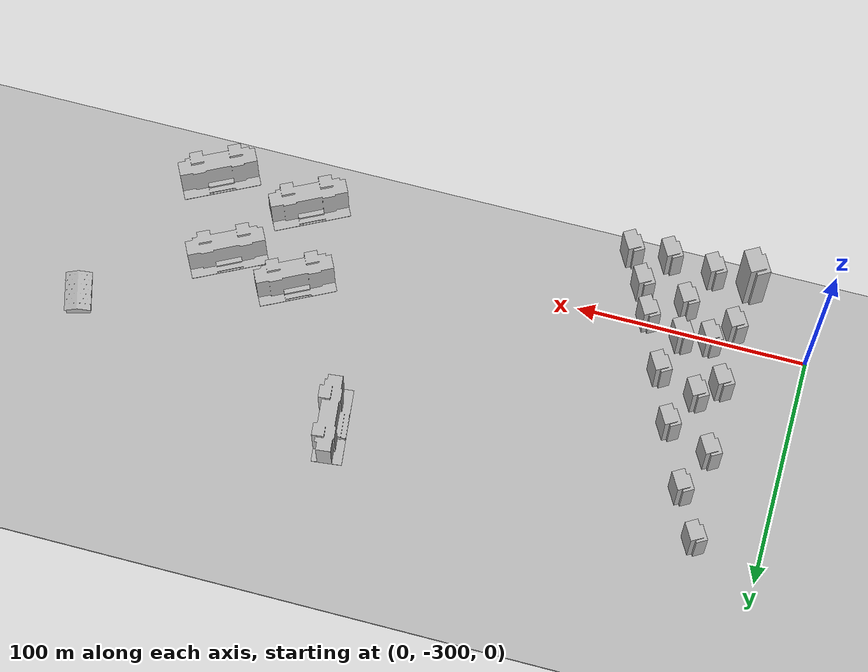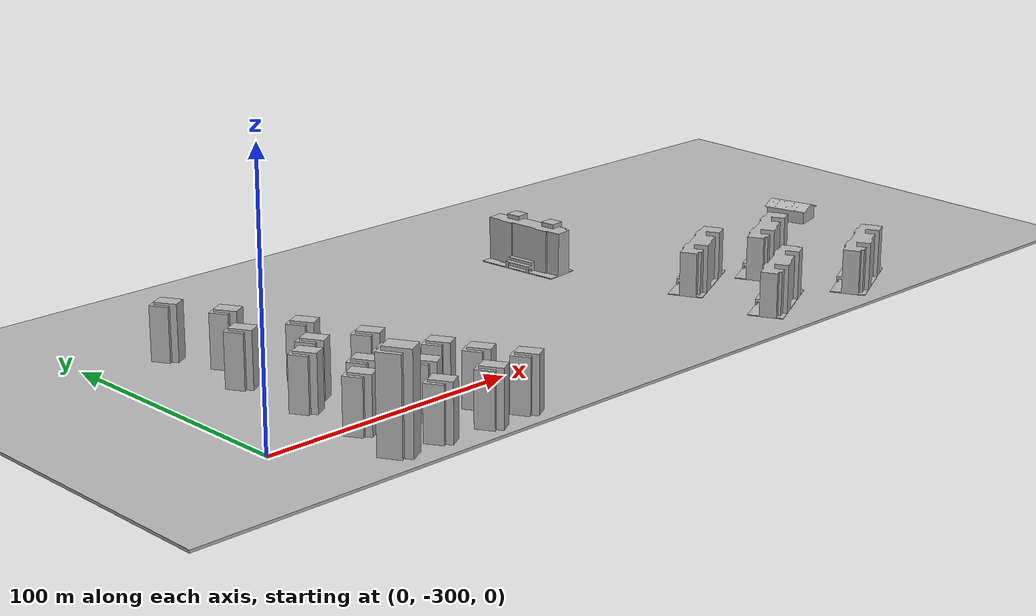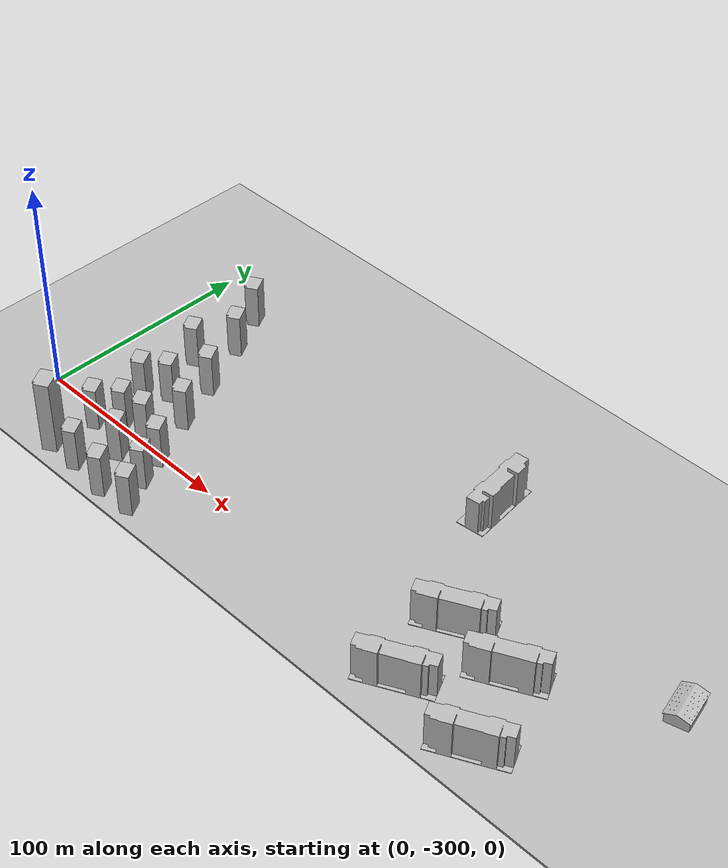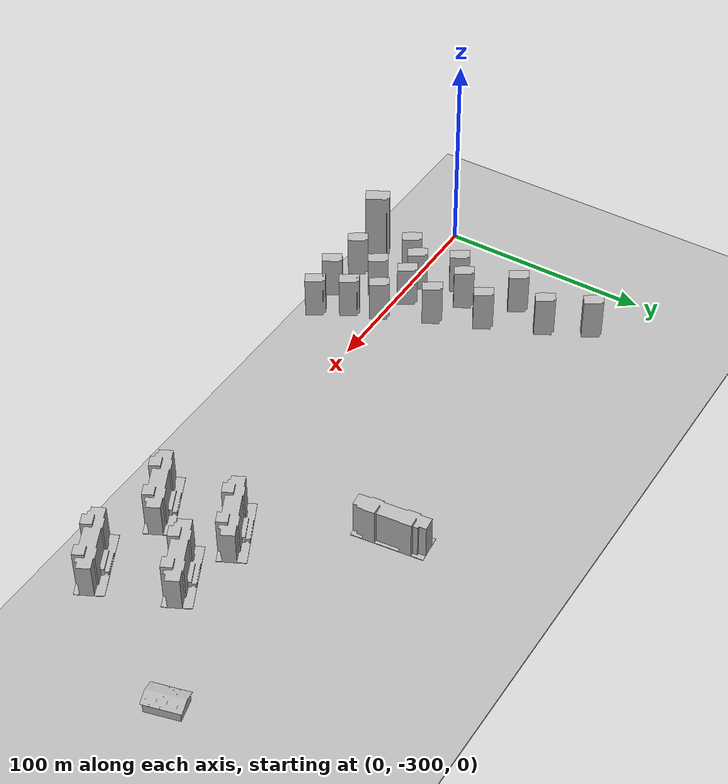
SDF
<sdf version="1.7">
 <world name="default">
  <model name="ground_plane">
   <static>1</static>
   <link name="link">
    <collision name="collision">
     <geometry><mesh><uri>model://ground_plane/scripts/plane.dae</uri><normal>0 0 1</normal></mesh></geometry>
     <surface><friction><ode><mu>100</mu><mu2>50</mu2></ode></friction></surface>
    </collision>
    <visual name="visual">
     <geometry><mesh><uri>model://ground_plane/scripts/plane.dae</uri><normal>0 0 1</normal></mesh></geometry>
     <material>
      <lighting>1</lighting>
      <script><uri>model://ground_plane/scripts/plane.jpg</uri><name>__default__</name></script>
      <shader type="pixel"/>
     </material>
    </visual>
   </link>
  </model>
  <model name="apartment4_clone_3">
   <static>1</static>
   <link name="link_0">
    <inertial>
     <mass>1</mass>
     <inertia>
      <ixx>0.166667</ixx>
      <ixy>0</ixy>
      <ixz>0</ixz>
      <iyy>0.166667</iyy>
      <iyz>0</iyz>
      <izz>0.166667</izz>
     </inertia>
    </inertial>
    <pose>1e-06 -0 0 0 -0 0</pose>
    <visual name="visual">
     <geometry>
      <mesh><uri>model://apartment4/scripts/apartment1.dae</uri><scale>0.14 0.14 0.175</scale></mesh>
     </geometry>
     <material>
      <lighting>1</lighting>
      <script><uri>model://apartment4/scripts/apartment1.jpg</uri><name>__default__</name></script>
      <shader type="pixel"/>
     </material>
    </visual>
    <collision name="collision">
     <geometry>
      <mesh><uri>model://apartment4/scripts/apartment1.dae</uri><scale>0.14 0.14 0.175</scale></mesh>
     </geometry>
     <surface>
      <friction>
       <ode><mu>1</mu><mu2>1</mu2><fdir1>0 0 0</fdir1><slip1>0</slip1><slip2>0</slip2></ode>
       <torsional>
        <coefficient>1</coefficient>
        <patch_radius>0</patch_radius>
        <surface_radius>0</surface_radius>
        <use_patch_radius>1</use_patch_radius>
        <ode><slip>0</slip></ode>
       </torsional>
      </friction>
      <bounce><restitution_coefficient>0</restitution_coefficient><threshold>1e+06</threshold></bounce>
      <contact>
       <collide_without_contact>0</collide_without_contact>
       <collide_without_contact_bitmask>1</collide_without_contact_bitmask>
       <collide_bitmask>1</collide_bitmask>
       <ode>
        <soft_cfm>0</soft_cfm>
        <soft_erp>0.2</soft_erp>
        <kp>1e+13</kp>
        <kd>1</kd>
        <max_vel>0.01</max_vel>
        <min_depth>0</min_depth>
       </ode>
       <bullet>
        <split_impulse>1</split_impulse>
        <split_impulse_penetration_threshold>-0.01</split_impulse_penetration_threshold>
        <soft_cfm>0</soft_cfm>
        <soft_erp>0.2</soft_erp>
        <kp>1e+13</kp>
        <kd>1</kd>
       </bullet>
      </contact>
     </surface>
    </collision>
   </link>
   <static>0</static>
   <pose>29.4046 -209.903 0 0 -0 0.524325</pose>
  </model>
  <model name="apartment4_clone_4">
   <static>1</static>
   <link name="link_0">
    <inertial>
     <mass>1</mass>
     <inertia>
      <ixx>0.166667</ixx>
      <ixy>0</ixy>
      <ixz>0</ixz>
      <iyy>0.166667</iyy>
      <iyz>0</iyz>
      <izz>0.166667</izz>
     </inertia>
    </inertial>
    <pose>1e-06 -0 0 0 -0 0</pose>
    <visual name="visual">
     <geometry>
      <mesh><uri>model://apartment4/scripts/apartment1.dae</uri><scale>0.14 0.14 0.175</scale></mesh>
     </geometry>
     <material>
      <lighting>1</lighting>
      <script><uri>model://apartment4/scripts/apartment1.jpg</uri><name>__default__</name></script>
      <shader type="pixel"/>
     </material>
    </visual>
    <collision name="collision">
     <geometry>
      <mesh><uri>model://apartment4/scripts/apartment1.dae</uri><scale>0.14 0.14 0.175</scale></mesh>
     </geometry>
     <surface>
      <friction>
       <ode><mu>1</mu><mu2>1</mu2><fdir1>0 0 0</fdir1><slip1>0</slip1><slip2>0</slip2></ode>
       <torsional>
        <coefficient>1</coefficient>
        <patch_radius>0</patch_radius>
        <surface_radius>0</surface_radius>
        <use_patch_radius>1</use_patch_radius>
        <ode><slip>0</slip></ode>
       </torsional>
      </friction>
      <bounce><restitution_coefficient>0</restitution_coefficient><threshold>1e+06</threshold></bounce>
      <contact>
       <collide_without_contact>0</collide_without_contact>
       <collide_without_contact_bitmask>1</collide_without_contact_bitmask>
       <collide_bitmask>1</collide_bitmask>
       <ode>
        <soft_cfm>0</soft_cfm>
        <soft_erp>0.2</soft_erp>
        <kp>1e+13</kp>
        <kd>1</kd>
        <max_vel>0.01</max_vel>
        <min_depth>0</min_depth>
       </ode>
       <bullet>
        <split_impulse>1</split_impulse>
        <split_impulse_penetration_threshold>-0.01</split_impulse_penetration_threshold>
        <soft_cfm>0</soft_cfm>
        <soft_erp>0.2</soft_erp>
        <kp>1e+13</kp>
        <kd>1</kd>
       </bullet>
      </contact>
     </surface>
    </collision>
   </link>
   <static>0</static>
   <pose>39.5968 -229.73 0 0 -0 0.524325</pose>
  </model>
  <model name="apartment4_clone_5">
   <static>1</static>
   <link name="link_0">
    <inertial>
     <mass>1</mass>
     <inertia>
      <ixx>0.166667</ixx>
      <ixy>0</ixy>
      <ixz>0</ixz>
      <iyy>0.166667</iyy>
      <iyz>0</iyz>
      <izz>0.166667</izz>
     </inertia>
    </inertial>
    <pose>1e-06 -0 0 0 -0 0</pose>
    <visual name="visual">
     <geometry>
      <mesh><uri>model://apartment4/scripts/apartment1.dae</uri><scale>0.14 0.14 0.175</scale></mesh>
     </geometry>
     <material>
      <lighting>1</lighting>
      <script><uri>model://apartment4/scripts/apartment1.jpg</uri><name>__default__</name></script>
      <shader type="pixel"/>
     </material>
    </visual>
    <collision name="collision">
     <geometry>
      <mesh><uri>model://apartment4/scripts/apartment1.dae</uri><scale>0.14 0.14 0.175</scale></mesh>
     </geometry>
     <surface>
      <friction>
       <ode><mu>1</mu><mu2>1</mu2><fdir1>0 0 0</fdir1><slip1>0</slip1><slip2>0</slip2></ode>
       <torsional>
        <coefficient>1</coefficient>
        <patch_radius>0</patch_radius>
        <surface_radius>0</surface_radius>
        <use_patch_radius>1</use_patch_radius>
        <ode><slip>0</slip></ode>
       </torsional>
      </friction>
      <bounce><restitution_coefficient>0</restitution_coefficient><threshold>1e+06</threshold></bounce>
      <contact>
       <collide_without_contact>0</collide_without_contact>
       <collide_without_contact_bitmask>1</collide_without_contact_bitmask>
       <collide_bitmask>1</collide_bitmask>
       <ode>
        <soft_cfm>0</soft_cfm>
        <soft_erp>0.2</soft_erp>
        <kp>1e+13</kp>
        <kd>1</kd>
        <max_vel>0.01</max_vel>
        <min_depth>0</min_depth>
       </ode>
       <bullet>
        <split_impulse>1</split_impulse>
        <split_impulse_penetration_threshold>-0.01</split_impulse_penetration_threshold>
        <soft_cfm>0</soft_cfm>
        <soft_erp>0.2</soft_erp>
        <kp>1e+13</kp>
        <kd>1</kd>
       </bullet>
      </contact>
     </surface>
    </collision>
   </link>
   <static>0</static>
   <pose>51.2023 -256.153 0 0 -0 0.524325</pose>
  </model>
  <model name="apartment4_clone_6">
   <static>1</static>
   <link name="link_0">
    <inertial>
     <mass>1</mass>
     <inertia>
      <ixx>0.166667</ixx>
      <ixy>0</ixy>
      <ixz>0</ixz>
      <iyy>0.166667</iyy>
      <iyz>0</iyz>
      <izz>0.166667</izz>
     </inertia>
    </inertial>
    <pose>1e-06 -0 0 0 -0 0</pose>
    <visual name="visual">
     <geometry>
      <mesh><uri>model://apartment4/scripts/apartment1.dae</uri><scale>0.14 0.14 0.175</scale></mesh>
     </geometry>
     <material>
      <lighting>1</lighting>
      <script><uri>model://apartment4/scripts/apartment1.jpg</uri><name>__default__</name></script>
      <shader type="pixel"/>
     </material>
    </visual>
    <collision name="collision">
     <geometry>
      <mesh><uri>model://apartment4/scripts/apartment1.dae</uri><scale>0.14 0.14 0.175</scale></mesh>
     </geometry>
     <surface>
      <friction>
       <ode><mu>1</mu><mu2>1</mu2><fdir1>0 0 0</fdir1><slip1>0</slip1><slip2>0</slip2></ode>
       <torsional>
        <coefficient>1</coefficient>
        <patch_radius>0</patch_radius>
        <surface_radius>0</surface_radius>
        <use_patch_radius>1</use_patch_radius>
        <ode><slip>0</slip></ode>
       </torsional>
      </friction>
      <bounce><restitution_coefficient>0</restitution_coefficient><threshold>1e+06</threshold></bounce>
      <contact>
       <collide_without_contact>0</collide_without_contact>
       <collide_without_contact_bitmask>1</collide_without_contact_bitmask>
       <collide_bitmask>1</collide_bitmask>
       <ode>
        <soft_cfm>0</soft_cfm>
        <soft_erp>0.2</soft_erp>
        <kp>1e+13</kp>
        <kd>1</kd>
        <max_vel>0.01</max_vel>
        <min_depth>0</min_depth>
       </ode>
       <bullet>
        <split_impulse>1</split_impulse>
        <split_impulse_penetration_threshold>-0.01</split_impulse_penetration_threshold>
        <soft_cfm>0</soft_cfm>
        <soft_erp>0.2</soft_erp>
        <kp>1e+13</kp>
        <kd>1</kd>
       </bullet>
      </contact>
     </surface>
    </collision>
   </link>
   <static>0</static>
   <pose>60.3933 -278.563 0 0 -0 0.524325</pose>
  </model>
  <model name="apartment4_clone_7">
   <static>1</static>
   <link name="link_0">
    <inertial>
     <mass>1</mass>
     <inertia>
      <ixx>0.166667</ixx>
      <ixy>0</ixy>
      <ixz>0</ixz>
      <iyy>0.166667</iyy>
      <iyz>0</iyz>
      <izz>0.166667</izz>
     </inertia>
    </inertial>
    <pose>1e-06 -0 0 0 -0 0</pose>
    <visual name="visual">
     <geometry>
      <mesh><uri>model://apartment4/scripts/apartment1.dae</uri><scale>0.14 0.14 0.175</scale></mesh>
     </geometry>
     <material>
      <lighting>1</lighting>
      <script><uri>model://apartment4/scripts/apartment1.jpg</uri><name>__default__</name></script>
      <shader type="pixel"/>
     </material>
    </visual>
    <collision name="collision">
     <geometry>
      <mesh><uri>model://apartment4/scripts/apartment1.dae</uri><scale>0.14 0.14 0.175</scale></mesh>
     </geometry>
     <surface>
      <friction>
       <ode><mu>1</mu><mu2>1</mu2><fdir1>0 0 0</fdir1><slip1>0</slip1><slip2>0</slip2></ode>
       <torsional>
        <coefficient>1</coefficient>
        <patch_radius>0</patch_radius>
        <surface_radius>0</surface_radius>
        <use_patch_radius>1</use_patch_radius>
        <ode><slip>0</slip></ode>
       </torsional>
      </friction>
      <bounce><restitution_coefficient>0</restitution_coefficient><threshold>1e+06</threshold></bounce>
      <contact>
       <collide_without_contact>0</collide_without_contact>
       <collide_without_contact_bitmask>1</collide_without_contact_bitmask>
       <collide_bitmask>1</collide_bitmask>
       <ode>
        <soft_cfm>0</soft_cfm>
        <soft_erp>0.2</soft_erp>
        <kp>1e+13</kp>
        <kd>1</kd>
        <max_vel>0.01</max_vel>
        <min_depth>0</min_depth>
       </ode>
       <bullet>
        <split_impulse>1</split_impulse>
        <split_impulse_penetration_threshold>-0.01</split_impulse_penetration_threshold>
        <soft_cfm>0</soft_cfm>
        <soft_erp>0.2</soft_erp>
        <kp>1e+13</kp>
        <kd>1</kd>
       </bullet>
      </contact>
     </surface>
    </collision>
   </link>
   <static>0</static>
   <pose>70.7858 -301.382 0 0 -0 0.524325</pose>
  </model>
  <model name="apartment4_clone_8">
   <static>1</static>
   <link name="link_0">
    <inertial>
     <mass>1</mass>
     <inertia>
      <ixx>0.166667</ixx>
      <ixy>0</ixy>
      <ixz>0</ixz>
      <iyy>0.166667</iyy>
      <iyz>0</iyz>
      <izz>0.166667</izz>
     </inertia>
    </inertial>
    <pose>1e-06 -0 0 0 -0 0</pose>
    <visual name="visual">
     <geometry>
      <mesh><uri>model://apartment4/scripts/apartment1.dae</uri><scale>0.14 0.14 0.175</scale></mesh>
     </geometry>
     <material>
      <lighting>1</lighting>
      <script><uri>model://apartment4/scripts/apartment1.jpg</uri><name>__default__</name></script>
      <shader type="pixel"/>
     </material>
    </visual>
    <collision name="collision">
     <geometry>
      <mesh><uri>model://apartment4/scripts/apartment1.dae</uri><scale>0.14 0.14 0.175</scale></mesh>
     </geometry>
     <surface>
      <friction>
       <ode><mu>1</mu><mu2>1</mu2><fdir1>0 0 0</fdir1><slip1>0</slip1><slip2>0</slip2></ode>
       <torsional>
        <coefficient>1</coefficient>
        <patch_radius>0</patch_radius>
        <surface_radius>0</surface_radius>
        <use_patch_radius>1</use_patch_radius>
        <ode><slip>0</slip></ode>
       </torsional>
      </friction>
      <bounce><restitution_coefficient>0</restitution_coefficient><threshold>1e+06</threshold></bounce>
      <contact>
       <collide_without_contact>0</collide_without_contact>
       <collide_without_contact_bitmask>1</collide_without_contact_bitmask>
       <collide_bitmask>1</collide_bitmask>
       <ode>
        <soft_cfm>0</soft_cfm>
        <soft_erp>0.2</soft_erp>
        <kp>1e+13</kp>
        <kd>1</kd>
        <max_vel>0.01</max_vel>
        <min_depth>0</min_depth>
       </ode>
       <bullet>
        <split_impulse>1</split_impulse>
        <split_impulse_penetration_threshold>-0.01</split_impulse_penetration_threshold>
        <soft_cfm>0</soft_cfm>
        <soft_erp>0.2</soft_erp>
        <kp>1e+13</kp>
        <kd>1</kd>
       </bullet>
      </contact>
     </surface>
    </collision>
   </link>
   <static>0</static>
   <pose>84.164 -328.618 0 0 -0 0.524325</pose>
  </model>
  <model name="apartment4_clone_9">
   <static>1</static>
   <link name="link_0">
    <inertial>
     <mass>1</mass>
     <inertia>
      <ixx>0.166667</ixx>
      <ixy>0</ixy>
      <ixz>0</ixz>
      <iyy>0.166667</iyy>
      <iyz>0</iyz>
      <izz>0.166667</izz>
     </inertia>
    </inertial>
    <pose>1e-06 -0 0 0 -0 0</pose>
    <visual name="visual">
     <geometry>
      <mesh><uri>model://apartment4/scripts/apartment1.dae</uri><scale>0.14 0.14 0.175</scale></mesh>
     </geometry>
     <material>
      <lighting>1</lighting>
      <script><uri>model://apartment4/scripts/apartment1.jpg</uri><name>__default__</name></script>
      <shader type="pixel"/>
     </material>
    </visual>
    <collision name="collision">
     <geometry>
      <mesh><uri>model://apartment4/scripts/apartment1.dae</uri><scale>0.14 0.14 0.175</scale></mesh>
     </geometry>
     <surface>
      <friction>
       <ode><mu>1</mu><mu2>1</mu2><fdir1>0 0 0</fdir1><slip1>0</slip1><slip2>0</slip2></ode>
       <torsional>
        <coefficient>1</coefficient>
        <patch_radius>0</patch_radius>
        <surface_radius>0</surface_radius>
        <use_patch_radius>1</use_patch_radius>
        <ode><slip>0</slip></ode>
       </torsional>
      </friction>
      <bounce><restitution_coefficient>0</restitution_coefficient><threshold>1e+06</threshold></bounce>
      <contact>
       <collide_without_contact>0</collide_without_contact>
       <collide_without_contact_bitmask>1</collide_without_contact_bitmask>
       <collide_bitmask>1</collide_bitmask>
       <ode>
        <soft_cfm>0</soft_cfm>
        <soft_erp>0.2</soft_erp>
        <kp>1e+13</kp>
        <kd>1</kd>
        <max_vel>0.01</max_vel>
        <min_depth>0</min_depth>
       </ode>
       <bullet>
        <split_impulse>1</split_impulse>
        <split_impulse_penetration_threshold>-0.01</split_impulse_penetration_threshold>
        <soft_cfm>0</soft_cfm>
        <soft_erp>0.2</soft_erp>
        <kp>1e+13</kp>
        <kd>1</kd>
       </bullet>
      </contact>
     </surface>
    </collision>
   </link>
   <static>0</static>
   <pose>67.5063 -329.805 0 0 -0 0.524325</pose>
  </model>
  <model name="apartment4_clone_10">
   <static>1</static>
   <link name="link_0">
    <inertial>
     <mass>1</mass>
     <inertia>
      <ixx>0.166667</ixx>
      <ixy>0</ixy>
      <ixz>0</ixz>
      <iyy>0.166667</iyy>
      <iyz>0</iyz>
      <izz>0.166667</izz>
     </inertia>
    </inertial>
    <pose>1e-06 -0 0 0 -0 0</pose>
    <visual name="visual">
     <geometry>
      <mesh><uri>model://apartment4/scripts/apartment1.dae</uri><scale>0.14 0.14 0.175</scale></mesh>
     </geometry>
     <material>
      <lighting>1</lighting>
      <script><uri>model://apartment4/scripts/apartment1.jpg</uri><name>__default__</name></script>
      <shader type="pixel"/>
     </material>
    </visual>
    <collision name="collision">
     <geometry>
      <mesh><uri>model://apartment4/scripts/apartment1.dae</uri><scale>0.14 0.14 0.175</scale></mesh>
     </geometry>
     <surface>
      <friction>
       <ode><mu>1</mu><mu2>1</mu2><fdir1>0 0 0</fdir1><slip1>0</slip1><slip2>0</slip2></ode>
       <torsional>
        <coefficient>1</coefficient>
        <patch_radius>0</patch_radius>
        <surface_radius>0</surface_radius>
        <use_patch_radius>1</use_patch_radius>
        <ode><slip>0</slip></ode>
       </torsional>
      </friction>
      <bounce><restitution_coefficient>0</restitution_coefficient><threshold>1e+06</threshold></bounce>
      <contact>
       <collide_without_contact>0</collide_without_contact>
       <collide_without_contact_bitmask>1</collide_without_contact_bitmask>
       <collide_bitmask>1</collide_bitmask>
       <ode>
        <soft_cfm>0</soft_cfm>
        <soft_erp>0.2</soft_erp>
        <kp>1e+13</kp>
        <kd>1</kd>
        <max_vel>0.01</max_vel>
        <min_depth>0</min_depth>
       </ode>
       <bullet>
        <split_impulse>1</split_impulse>
        <split_impulse_penetration_threshold>-0.01</split_impulse_penetration_threshold>
        <soft_cfm>0</soft_cfm>
        <soft_erp>0.2</soft_erp>
        <kp>1e+13</kp>
        <kd>1</kd>
       </bullet>
      </contact>
     </surface>
    </collision>
   </link>
   <static>0</static>
   <pose>54.7453 -295.615 0 0 -0 0.524325</pose>
  </model>
  <model name="apartment4_clone_11">
   <static>1</static>
   <link name="link_0">
    <inertial>
     <mass>1</mass>
     <inertia>
      <ixx>0.166667</ixx>
      <ixy>0</ixy>
      <ixz>0</ixz>
      <iyy>0.166667</iyy>
      <iyz>0</iyz>
      <izz>0.166667</izz>
     </inertia>
    </inertial>
    <pose>1e-06 -0 0 0 -0 0</pose>
    <visual name="visual">
     <geometry>
      <mesh><uri>model://apartment4/scripts/apartment1.dae</uri><scale>0.14 0.14 0.175</scale></mesh>
     </geometry>
     <material>
      <lighting>1</lighting>
      <script><uri>model://apartment4/scripts/apartment1.jpg</uri><name>__default__</name></script>
      <shader type="pixel"/>
     </material>
    </visual>
    <collision name="collision">
     <geometry>
      <mesh><uri>model://apartment4/scripts/apartment1.dae</uri><scale>0.14 0.14 0.175</scale></mesh>
     </geometry>
     <surface>
      <friction>
       <ode><mu>1</mu><mu2>1</mu2><fdir1>0 0 0</fdir1><slip1>0</slip1><slip2>0</slip2></ode>
       <torsional>
        <coefficient>1</coefficient>
        <patch_radius>0</patch_radius>
        <surface_radius>0</surface_radius>
        <use_patch_radius>1</use_patch_radius>
        <ode><slip>0</slip></ode>
       </torsional>
      </friction>
      <bounce><restitution_coefficient>0</restitution_coefficient><threshold>1e+06</threshold></bounce>
      <contact>
       <collide_without_contact>0</collide_without_contact>
       <collide_without_contact_bitmask>1</collide_without_contact_bitmask>
       <collide_bitmask>1</collide_bitmask>
       <ode>
        <soft_cfm>0</soft_cfm>
        <soft_erp>0.2</soft_erp>
        <kp>1e+13</kp>
        <kd>1</kd>
        <max_vel>0.01</max_vel>
        <min_depth>0</min_depth>
       </ode>
       <bullet>
        <split_impulse>1</split_impulse>
        <split_impulse_penetration_threshold>-0.01</split_impulse_penetration_threshold>
        <soft_cfm>0</soft_cfm>
        <soft_erp>0.2</soft_erp>
        <kp>1e+13</kp>
        <kd>1</kd>
       </bullet>
      </contact>
     </surface>
    </collision>
   </link>
   <static>0</static>
   <pose>42.8012 -271.496 0 0 -0 0.524325</pose>
  </model>
  <model name="apartment4_clone_12">
   <static>1</static>
   <link name="link_0">
    <inertial>
     <mass>1</mass>
     <inertia>
      <ixx>0.166667</ixx>
      <ixy>0</ixy>
      <ixz>0</ixz>
      <iyy>0.166667</iyy>
      <iyz>0</iyz>
      <izz>0.166667</izz>
     </inertia>
    </inertial>
    <pose>1e-06 -0 0 0 -0 0</pose>
    <visual name="visual">
     <geometry>
      <mesh><uri>model://apartment4/scripts/apartment1.dae</uri><scale>0.14 0.14 0.175</scale></mesh>
     </geometry>
     <material>
      <lighting>1</lighting>
      <script><uri>model://apartment4/scripts/apartment1.jpg</uri><name>__default__</name></script>
      <shader type="pixel"/>
     </material>
    </visual>
    <collision name="collision">
     <geometry>
      <mesh><uri>model://apartment4/scripts/apartment1.dae</uri><scale>0.14 0.14 0.175</scale></mesh>
     </geometry>
     <surface>
      <friction>
       <ode><mu>1</mu><mu2>1</mu2><fdir1>0 0 0</fdir1><slip1>0</slip1><slip2>0</slip2></ode>
       <torsional>
        <coefficient>1</coefficient>
        <patch_radius>0</patch_radius>
        <surface_radius>0</surface_radius>
        <use_patch_radius>1</use_patch_radius>
        <ode><slip>0</slip></ode>
       </torsional>
      </friction>
      <bounce><restitution_coefficient>0</restitution_coefficient><threshold>1e+06</threshold></bounce>
      <contact>
       <collide_without_contact>0</collide_without_contact>
       <collide_without_contact_bitmask>1</collide_without_contact_bitmask>
       <collide_bitmask>1</collide_bitmask>
       <ode>
        <soft_cfm>0</soft_cfm>
        <soft_erp>0.2</soft_erp>
        <kp>1e+13</kp>
        <kd>1</kd>
        <max_vel>0.01</max_vel>
        <min_depth>0</min_depth>
       </ode>
       <bullet>
        <split_impulse>1</split_impulse>
        <split_impulse_penetration_threshold>-0.01</split_impulse_penetration_threshold>
        <soft_cfm>0</soft_cfm>
        <soft_erp>0.2</soft_erp>
        <kp>1e+13</kp>
        <kd>1</kd>
       </bullet>
      </contact>
     </surface>
    </collision>
   </link>
   <static>0</static>
   <pose>31.8241 -247.96 0 0 -0 0.524325</pose>
  </model>
  <model name="apartment4_clone_29">
   <static>1</static>
   <link name="link_0">
    <inertial>
     <mass>1</mass>
     <inertia>
      <ixx>0.166667</ixx>
      <ixy>0</ixy>
      <ixz>0</ixz>
      <iyy>0.166667</iyy>
      <iyz>0</iyz>
      <izz>0.166667</izz>
     </inertia>
    </inertial>
    <pose>1e-06 -0 0 0 -0 0</pose>
    <visual name="visual">
     <geometry>
      <mesh><uri>model://apartment4/scripts/apartment1.dae</uri><scale>0.14 0.14 0.175</scale></mesh>
     </geometry>
     <material>
      <lighting>1</lighting>
      <script><uri>model://apartment4/scripts/apartment1.jpg</uri><name>__default__</name></script>
      <shader type="pixel"/>
     </material>
    </visual>
    <collision name="collision">
     <geometry>
      <mesh><uri>model://apartment4/scripts/apartment1.dae</uri><scale>0.14 0.14 0.175</scale></mesh>
     </geometry>
     <surface>
      <friction>
       <ode><mu>1</mu><mu2>1</mu2><fdir1>0 0 0</fdir1><slip1>0</slip1><slip2>0</slip2></ode>
       <torsional>
        <coefficient>1</coefficient>
        <patch_radius>0</patch_radius>
        <surface_radius>0</surface_radius>
        <use_patch_radius>1</use_patch_radius>
        <ode><slip>0</slip></ode>
       </torsional>
      </friction>
      <bounce><restitution_coefficient>0</restitution_coefficient><threshold>1e+06</threshold></bounce>
      <contact>
       <collide_without_contact>0</collide_without_contact>
       <collide_without_contact_bitmask>1</collide_without_contact_bitmask>
       <collide_bitmask>1</collide_bitmask>
       <ode>
        <soft_cfm>0</soft_cfm>
        <soft_erp>0.2</soft_erp>
        <kp>1e+13</kp>
        <kd>1</kd>
        <max_vel>0.01</max_vel>
        <min_depth>0</min_depth>
       </ode>
       <bullet>
        <split_impulse>1</split_impulse>
        <split_impulse_penetration_threshold>-0.01</split_impulse_penetration_threshold>
        <soft_cfm>0</soft_cfm>
        <soft_erp>0.2</soft_erp>
        <kp>1e+13</kp>
        <kd>1</kd>
       </bullet>
      </contact>
     </surface>
    </collision>
   </link>
   <static>0</static>
   <pose>33.5953 -279.153 0 0 -0 0.524325</pose>
  </model>
  <model name="apartment4_clone_30">
   <static>1</static>
   <link name="link_0">
    <inertial>
     <mass>1</mass>
     <inertia>
      <ixx>0.166667</ixx>
      <ixy>0</ixy>
      <ixz>0</ixz>
      <iyy>0.166667</iyy>
      <iyz>0</iyz>
      <izz>0.166667</izz>
     </inertia>
    </inertial>
    <pose>1e-06 -0 0 0 -0 0</pose>
    <visual name="visual">
     <geometry>
      <mesh><uri>model://apartment4/scripts/apartment1.dae</uri><scale>0.14 0.14 0.175</scale></mesh>
     </geometry>
     <material>
      <lighting>1</lighting>
      <script><uri>model://apartment4/scripts/apartment1.jpg</uri><name>__default__</name></script>
      <shader type="pixel"/>
     </material>
    </visual>
    <collision name="collision">
     <geometry>
      <mesh><uri>model://apartment4/scripts/apartment1.dae</uri><scale>0.14 0.14 0.175</scale></mesh>
     </geometry>
     <surface>
      <friction>
       <ode><mu>1</mu><mu2>1</mu2><fdir1>0 0 0</fdir1><slip1>0</slip1><slip2>0</slip2></ode>
       <torsional>
        <coefficient>1</coefficient>
        <patch_radius>0</patch_radius>
        <surface_radius>0</surface_radius>
        <use_patch_radius>1</use_patch_radius>
        <ode><slip>0</slip></ode>
       </torsional>
      </friction>
      <bounce><restitution_coefficient>0</restitution_coefficient><threshold>1e+06</threshold></bounce>
      <contact>
       <collide_without_contact>0</collide_without_contact>
       <collide_without_contact_bitmask>1</collide_without_contact_bitmask>
       <collide_bitmask>1</collide_bitmask>
       <ode>
        <soft_cfm>0</soft_cfm>
        <soft_erp>0.2</soft_erp>
        <kp>1e+13</kp>
        <kd>1</kd>
        <max_vel>0.01</max_vel>
        <min_depth>0</min_depth>
       </ode>
       <bullet>
        <split_impulse>1</split_impulse>
        <split_impulse_penetration_threshold>-0.01</split_impulse_penetration_threshold>
        <soft_cfm>0</soft_cfm>
        <soft_erp>0.2</soft_erp>
        <kp>1e+13</kp>
        <kd>1</kd>
       </bullet>
      </contact>
     </surface>
    </collision>
   </link>
   <static>0</static>
   <pose>42.6948 -297.196 0 0 -0 0.524325</pose>
  </model>
  <model name="apartment4_clone_31">
   <static>1</static>
   <link name="link_0">
    <inertial>
     <mass>1</mass>
     <inertia>
      <ixx>0.166667</ixx>
      <ixy>0</ixy>
      <ixz>0</ixz>
      <iyy>0.166667</iyy>
      <iyz>0</iyz>
      <izz>0.166667</izz>
     </inertia>
    </inertial>
    <pose>1e-06 -0 0 0 -0 0</pose>
    <visual name="visual">
     <geometry>
      <mesh><uri>model://apartment4/scripts/apartment1.dae</uri><scale>0.14 0.14 0.175</scale></mesh>
     </geometry>
     <material>
      <lighting>1</lighting>
      <script><uri>model://apartment4/scripts/apartment1.jpg</uri><name>__default__</name></script>
      <shader type="pixel"/>
     </material>
    </visual>
    <collision name="collision">
     <geometry>
      <mesh><uri>model://apartment4/scripts/apartment1.dae</uri><scale>0.14 0.14 0.175</scale></mesh>
     </geometry>
     <surface>
      <friction>
       <ode><mu>1</mu><mu2>1</mu2><fdir1>0 0 0</fdir1><slip1>0</slip1><slip2>0</slip2></ode>
       <torsional>
        <coefficient>1</coefficient>
        <patch_radius>0</patch_radius>
        <surface_radius>0</surface_radius>
        <use_patch_radius>1</use_patch_radius>
        <ode><slip>0</slip></ode>
       </torsional>
      </friction>
      <bounce><restitution_coefficient>0</restitution_coefficient><threshold>1e+06</threshold></bounce>
      <contact>
       <collide_without_contact>0</collide_without_contact>
       <collide_without_contact_bitmask>1</collide_without_contact_bitmask>
       <collide_bitmask>1</collide_bitmask>
       <ode>
        <soft_cfm>0</soft_cfm>
        <soft_erp>0.2</soft_erp>
        <kp>1e+13</kp>
        <kd>1</kd>
        <max_vel>0.01</max_vel>
        <min_depth>0</min_depth>
       </ode>
       <bullet>
        <split_impulse>1</split_impulse>
        <split_impulse_penetration_threshold>-0.01</split_impulse_penetration_threshold>
        <soft_cfm>0</soft_cfm>
        <soft_erp>0.2</soft_erp>
        <kp>1e+13</kp>
        <kd>1</kd>
       </bullet>
      </contact>
     </surface>
    </collision>
   </link>
   <static>0</static>
   <pose>56.1275 -311.166 0 0 -0 0.524325</pose>
  </model>
  <model name="apartment4_clone_32">
   <static>1</static>
   <link name="link_0">
    <inertial>
     <mass>1</mass>
     <inertia>
      <ixx>0.166667</ixx>
      <ixy>0</ixy>
      <ixz>0</ixz>
      <iyy>0.166667</iyy>
      <iyz>0</iyz>
      <izz>0.166667</izz>
     </inertia>
    </inertial>
    <pose>1e-06 -0 0 0 -0 0</pose>
    <visual name="visual">
     <geometry>
      <mesh><uri>model://apartment4/scripts/apartment1.dae</uri><scale>0.14 0.14 0.175</scale></mesh>
     </geometry>
     <material>
      <lighting>1</lighting>
      <script><uri>model://apartment4/scripts/apartment1.jpg</uri><name>__default__</name></script>
      <shader type="pixel"/>
     </material>
    </visual>
    <collision name="collision">
     <geometry>
      <mesh><uri>model://apartment4/scripts/apartment1.dae</uri><scale>0.14 0.14 0.175</scale></mesh>
     </geometry>
     <surface>
      <friction>
       <ode><mu>1</mu><mu2>1</mu2><fdir1>0 0 0</fdir1><slip1>0</slip1><slip2>0</slip2></ode>
       <torsional>
        <coefficient>1</coefficient>
        <patch_radius>0</patch_radius>
        <surface_radius>0</surface_radius>
        <use_patch_radius>1</use_patch_radius>
        <ode><slip>0</slip></ode>
       </torsional>
      </friction>
      <bounce><restitution_coefficient>0</restitution_coefficient><threshold>1e+06</threshold></bounce>
      <contact>
       <collide_without_contact>0</collide_without_contact>
       <collide_without_contact_bitmask>1</collide_without_contact_bitmask>
       <collide_bitmask>1</collide_bitmask>
       <ode>
        <soft_cfm>0</soft_cfm>
        <soft_erp>0.2</soft_erp>
        <kp>1e+13</kp>
        <kd>1</kd>
        <max_vel>0.01</max_vel>
        <min_depth>0</min_depth>
       </ode>
       <bullet>
        <split_impulse>1</split_impulse>
        <split_impulse_penetration_threshold>-0.01</split_impulse_penetration_threshold>
        <soft_cfm>0</soft_cfm>
        <soft_erp>0.2</soft_erp>
        <kp>1e+13</kp>
        <kd>1</kd>
       </bullet>
      </contact>
     </surface>
    </collision>
   </link>
   <static>0</static>
   <pose>47.9699 -327.562 0 0 -0 0.524325</pose>
  </model>
  <model name="apartment4_clone_44">
   <static>1</static>
   <link name="link_0">
    <inertial>
     <mass>1</mass>
     <inertia>
      <ixx>0.166667</ixx>
      <ixy>0</ixy>
      <ixz>0</ixz>
      <iyy>0.166667</iyy>
      <iyz>0</iyz>
      <izz>0.166667</izz>
     </inertia>
    </inertial>
    <pose>1e-06 -0 0 0 -0 0</pose>
    <visual name="visual">
     <geometry>
      <mesh><uri>model://apartment4/scripts/apartment1.dae</uri><scale>0.14 0.14 0.175</scale></mesh>
     </geometry>
     <material>
      <lighting>1</lighting>
      <script><uri>model://apartment4/scripts/apartment1.jpg</uri><name>__default__</name></script>
      <shader type="pixel"/>
     </material>
    </visual>
    <collision name="collision">
     <geometry>
      <mesh><uri>model://apartment4/scripts/apartment1.dae</uri><scale>0.14 0.14 0.175</scale></mesh>
     </geometry>
     <surface>
      <friction>
       <ode><mu>1</mu><mu2>1</mu2><fdir1>0 0 0</fdir1><slip1>0</slip1><slip2>0</slip2></ode>
       <torsional>
        <coefficient>1</coefficient>
        <patch_radius>0</patch_radius>
        <surface_radius>0</surface_radius>
        <use_patch_radius>1</use_patch_radius>
        <ode><slip>0</slip></ode>
       </torsional>
      </friction>
      <bounce><restitution_coefficient>0</restitution_coefficient><threshold>1e+06</threshold></bounce>
      <contact>
       <collide_without_contact>0</collide_without_contact>
       <collide_without_contact_bitmask>1</collide_without_contact_bitmask>
       <collide_bitmask>1</collide_bitmask>
       <ode>
        <soft_cfm>0</soft_cfm>
        <soft_erp>0.2</soft_erp>
        <kp>1e+13</kp>
        <kd>1</kd>
        <max_vel>0.01</max_vel>
        <min_depth>0</min_depth>
       </ode>
       <bullet>
        <split_impulse>1</split_impulse>
        <split_impulse_penetration_threshold>-0.01</split_impulse_penetration_threshold>
        <soft_cfm>0</soft_cfm>
        <soft_erp>0.2</soft_erp>
        <kp>1e+13</kp>
        <kd>1</kd>
       </bullet>
      </contact>
     </surface>
    </collision>
   </link>
   <static>0</static>
   <pose>33.8933 -305.577 0 0 -0 0.524325</pose>
  </model>
  <model name="tower_4">
   <static>1</static>
   <link name="link_0">
    <inertial>
     <mass>1</mass>
     <inertia>
      <ixx>0.166667</ixx>
      <ixy>0</ixy>
      <ixz>0</ixz>
      <iyy>0.166667</iyy>
      <iyz>0</iyz>
      <izz>0.166667</izz>
     </inertia>
    </inertial>
    <pose>1e-06 -0 0 0 -0 0</pose>
    <visual name="visual">
     <geometry><mesh><uri>model://tower/scripts/apartment1.dae</uri><scale>0.17 0.17 0.3</scale></mesh></geometry>
     <material>
      <lighting>1</lighting>
      <script><uri>model://tower/scripts/apartment1.jpg</uri><name>__default__</name></script>
      <shader type="pixel"/>
     </material>
    </visual>
    <collision name="collision">
     <geometry><mesh><uri>model://tower/scripts/apartment1.dae</uri><scale>0.17 0.17 0.3</scale></mesh></geometry>
     <surface>
      <friction>
       <ode><mu>1</mu><mu2>1</mu2><fdir1>0 0 0</fdir1><slip1>0</slip1><slip2>0</slip2></ode>
       <torsional>
        <coefficient>1</coefficient>
        <patch_radius>0</patch_radius>
        <surface_radius>0</surface_radius>
        <use_patch_radius>1</use_patch_radius>
        <ode><slip>0</slip></ode>
       </torsional>
      </friction>
      <bounce><restitution_coefficient>0</restitution_coefficient><threshold>1e+06</threshold></bounce>
      <contact>
       <collide_without_contact>0</collide_without_contact>
       <collide_without_contact_bitmask>1</collide_without_contact_bitmask>
       <collide_bitmask>1</collide_bitmask>
       <ode>
        <soft_cfm>0</soft_cfm>
        <soft_erp>0.2</soft_erp>
        <kp>1e+13</kp>
        <kd>1</kd>
        <max_vel>0.01</max_vel>
        <min_depth>0</min_depth>
       </ode>
       <bullet>
        <split_impulse>1</split_impulse>
        <split_impulse_penetration_threshold>-0.01</split_impulse_penetration_threshold>
        <soft_cfm>0</soft_cfm>
        <soft_erp>0.2</soft_erp>
        <kp>1e+13</kp>
        <kd>1</kd>
       </bullet>
      </contact>
     </surface>
    </collision>
   </link>
   <static>0</static>
   <pose>31.6203 -326.594 0 0 -0 0.512614</pose>
  </model>
  <model name="apartment4_clone_8_clone">
   <static>1</static>
   <link name="link_0">
    <inertial>
     <mass>1</mass>
     <inertia>
      <ixx>0.166667</ixx>
      <ixy>0</ixy>
      <ixz>0</ixz>
      <iyy>0.166667</iyy>
      <iyz>0</iyz>
      <izz>0.166667</izz>
     </inertia>
    </inertial>
    <pose>1e-06 -0 0 0 -0 0</pose>
    <visual name="visual">
     <geometry>
      <mesh><uri>model://apartment4/scripts/apartment1.dae</uri><scale>0.14 0.14 0.175</scale></mesh>
     </geometry>
     <material>
      <lighting>1</lighting>
      <script><uri>model://apartment4/scripts/apartment1.jpg</uri><name>__default__</name></script>
      <shader type="pixel"/>
     </material>
    </visual>
    <collision name="collision">
     <geometry>
      <mesh><uri>model://apartment4/scripts/apartment1.dae</uri><scale>0.14 0.14 0.175</scale></mesh>
     </geometry>
     <surface>
      <friction>
       <ode><mu>1</mu><mu2>1</mu2><fdir1>0 0 0</fdir1><slip1>0</slip1><slip2>0</slip2></ode>
       <torsional>
        <coefficient>1</coefficient>
        <patch_radius>0</patch_radius>
        <surface_radius>0</surface_radius>
        <use_patch_radius>1</use_patch_radius>
        <ode><slip>0</slip></ode>
       </torsional>
      </friction>
      <bounce><restitution_coefficient>0</restitution_coefficient><threshold>1e+06</threshold></bounce>
      <contact>
       <collide_without_contact>0</collide_without_contact>
       <collide_without_contact_bitmask>1</collide_without_contact_bitmask>
       <collide_bitmask>1</collide_bitmask>
       <ode>
        <soft_cfm>0</soft_cfm>
        <soft_erp>0.2</soft_erp>
        <kp>1e+13</kp>
        <kd>1</kd>
        <max_vel>0.01</max_vel>
        <min_depth>0</min_depth>
       </ode>
       <bullet>
        <split_impulse>1</split_impulse>
        <split_impulse_penetration_threshold>-0.01</split_impulse_penetration_threshold>
        <soft_cfm>0</soft_cfm>
        <soft_erp>0.2</soft_erp>
        <kp>1e+13</kp>
        <kd>1</kd>
       </bullet>
      </contact>
     </surface>
    </collision>
   </link>
   <static>0</static>
   <pose>76.2058 -314.669 0 0 -0 0.524325</pose>
  </model>
  <model name="apartment7_clone_9">
   <static>1</static>
   <link name="link_0">
    <inertial>
     <mass>1</mass>
     <inertia>
      <ixx>0.166667</ixx>
      <ixy>0</ixy>
      <ixz>0</ixz>
      <iyy>0.166667</iyy>
      <iyz>0</iyz>
      <izz>0.166667</izz>
     </inertia>
    </inertial>
    <pose>0.000226 2e-06 0 0 -0 0</pose>
    <visual name="visual">
     <geometry>
      <mesh><uri>model://apartment0/scripts/apartment.dae</uri><scale>0.45 0.21 0.11</scale></mesh>
     </geometry>
     <material>
      <lighting>1</lighting>
      <script><uri>model://apartment0/scripts/building.jpg</uri><name>__default__</name></script>
      <shader type="pixel"/>
     </material>
    </visual>
    <collision name="collision">
     <geometry>
      <mesh><uri>model://apartment0/scripts/apartment.dae</uri><scale>0.45 0.21 0.11</scale></mesh>
     </geometry>
     <surface>
      <friction>
       <ode><mu>1</mu><mu2>1</mu2><fdir1>0 0 0</fdir1><slip1>0</slip1><slip2>0</slip2></ode>
       <torsional>
        <coefficient>1</coefficient>
        <patch_radius>0</patch_radius>
        <surface_radius>0</surface_radius>
        <use_patch_radius>1</use_patch_radius>
        <ode><slip>0</slip></ode>
       </torsional>
      </friction>
      <bounce><restitution_coefficient>0</restitution_coefficient><threshold>1e+06</threshold></bounce>
      <contact>
       <collide_without_contact>0</collide_without_contact>
       <collide_without_contact_bitmask>1</collide_without_contact_bitmask>
       <collide_bitmask>1</collide_bitmask>
       <ode>
        <soft_cfm>0</soft_cfm>
        <soft_erp>0.2</soft_erp>
        <kp>1e+13</kp>
        <kd>1</kd>
        <max_vel>0.01</max_vel>
        <min_depth>0</min_depth>
       </ode>
       <bullet>
        <split_impulse>1</split_impulse>
        <split_impulse_penetration_threshold>-0.01</split_impulse_penetration_threshold>
        <soft_cfm>0</soft_cfm>
        <soft_erp>0.2</soft_erp>
        <kp>1e+13</kp>
        <kd>1</kd>
       </bullet>
      </contact>
     </surface>
    </collision>
   </link>
   <static>0</static>
   <pose>188.316 -221.725 0.315608 0 0 -1.46088</pose>
  </model>
  <model name="farmhouse_clone_clone_0">
   <static>1</static>
   <link name="link_0">
    <inertial>
     <mass>1</mass>
     <inertia>
      <ixx>0.166667</ixx>
      <ixy>0</ixy>
      <ixz>0</ixz>
      <iyy>0.166667</iyy>
      <iyz>0</iyz>
      <izz>0.166667</izz>
     </inertia>
    </inertial>
    <pose>-0 -3e-06 0 0 -0 0</pose>
    <visual name="visual">
     <geometry><mesh><uri>model://farmhouse/scripts/farmhouse.dae</uri><scale>8 8 5</scale></mesh></geometry>
     <material>
      <lighting>1</lighting>
      <script><uri>model://farmhouse/scripts/farmhouse.jpg</uri><name>__default__</name></script>
      <shader type="pixel"/>
     </material>
    </visual>
    <collision name="collision">
     <geometry><mesh><uri>model://farmhouse/scripts/farmhouse.dae</uri><scale>8 8 5</scale></mesh></geometry>
     <surface>
      <friction>
       <ode><mu>1</mu><mu2>1</mu2><fdir1>0 0 0</fdir1><slip1>0</slip1><slip2>0</slip2></ode>
       <torsional>
        <coefficient>1</coefficient>
        <patch_radius>0</patch_radius>
        <surface_radius>0</surface_radius>
        <use_patch_radius>1</use_patch_radius>
        <ode><slip>0</slip></ode>
       </torsional>
      </friction>
      <bounce><restitution_coefficient>0</restitution_coefficient><threshold>1e+06</threshold></bounce>
      <contact>
       <collide_without_contact>0</collide_without_contact>
       <collide_without_contact_bitmask>1</collide_without_contact_bitmask>
       <collide_bitmask>1</collide_bitmask>
       <ode>
        <soft_cfm>0</soft_cfm>
        <soft_erp>0.2</soft_erp>
        <kp>1e+13</kp>
        <kd>1</kd>
        <max_vel>0.01</max_vel>
        <min_depth>0</min_depth>
       </ode>
       <bullet>
        <split_impulse>1</split_impulse>
        <split_impulse_penetration_threshold>-0.01</split_impulse_penetration_threshold>
        <soft_cfm>0</soft_cfm>
        <soft_erp>0.2</soft_erp>
        <kp>1e+13</kp>
        <kd>1</kd>
       </bullet>
      </contact>
     </surface>
    </collision>
   </link>
   <static>0</static>
   <pose>308.526 -250.828 0 0 0 -1.31658</pose>
  </model>
  <model name="apartment7_clone_8_clone">
   <static>1</static>
   <link name="link_0">
    <inertial>
     <mass>1</mass>
     <inertia>
      <ixx>0.166667</ixx>
      <ixy>0</ixy>
      <ixz>0</ixz>
      <iyy>0.166667</iyy>
      <iyz>0</iyz>
      <izz>0.166667</izz>
     </inertia>
    </inertial>
    <pose>0.000226 2e-06 0 0 -0 0</pose>
    <visual name="visual">
     <geometry>
      <mesh><uri>model://apartment0/scripts/apartment.dae</uri><scale>0.45 0.21 0.11</scale></mesh>
     </geometry>
     <material>
      <lighting>1</lighting>
      <script><uri>model://apartment0/scripts/building.jpg</uri><name>__default__</name></script>
      <shader type="pixel"/>
     </material>
    </visual>
    <collision name="collision">
     <geometry>
      <mesh><uri>model://apartment0/scripts/apartment.dae</uri><scale>0.45 0.21 0.11</scale></mesh>
     </geometry>
     <surface>
      <friction>
       <ode><mu>1</mu><mu2>1</mu2><fdir1>0 0 0</fdir1><slip1>0</slip1><slip2>0</slip2></ode>
       <torsional>
        <coefficient>1</coefficient>
        <patch_radius>0</patch_radius>
        <surface_radius>0</surface_radius>
        <use_patch_radius>1</use_patch_radius>
        <ode><slip>0</slip></ode>
       </torsional>
      </friction>
      <bounce><restitution_coefficient>0</restitution_coefficient><threshold>1e+06</threshold></bounce>
      <contact>
       <collide_without_contact>0</collide_without_contact>
       <collide_without_contact_bitmask>1</collide_without_contact_bitmask>
       <collide_bitmask>1</collide_bitmask>
       <ode>
        <soft_cfm>0</soft_cfm>
        <soft_erp>0.2</soft_erp>
        <kp>1e+13</kp>
        <kd>1</kd>
        <max_vel>0.01</max_vel>
        <min_depth>0</min_depth>
       </ode>
       <bullet>
        <split_impulse>1</split_impulse>
        <split_impulse_penetration_threshold>-0.01</split_impulse_penetration_threshold>
        <soft_cfm>0</soft_cfm>
        <soft_erp>0.2</soft_erp>
        <kp>1e+13</kp>
        <kd>1</kd>
       </bullet>
      </contact>
     </surface>
    </collision>
   </link>
   <static>0</static>
   <pose>220.339 -280.083 0.315608 0 0 -2.67336</pose>
  </model>
  <model name="apartment7_clone_8_clone_clone">
   <static>1</static>
   <link name="link_0">
    <inertial>
     <mass>1</mass>
     <inertia>
      <ixx>0.166667</ixx>
      <ixy>0</ixy>
      <ixz>0</ixz>
      <iyy>0.166667</iyy>
      <iyz>0</iyz>
      <izz>0.166667</izz>
     </inertia>
    </inertial>
    <pose>0.000226 2e-06 0 0 -0 0</pose>
    <visual name="visual">
     <geometry>
      <mesh><uri>model://apartment0/scripts/apartment.dae</uri><scale>0.45 0.21 0.11</scale></mesh>
     </geometry>
     <material>
      <lighting>1</lighting>
      <script><uri>model://apartment0/scripts/building.jpg</uri><name>__default__</name></script>
      <shader type="pixel"/>
     </material>
    </visual>
    <collision name="collision">
     <geometry>
      <mesh><uri>model://apartment0/scripts/apartment.dae</uri><scale>0.45 0.21 0.11</scale></mesh>
     </geometry>
     <surface>
      <friction>
       <ode><mu>1</mu><mu2>1</mu2><fdir1>0 0 0</fdir1><slip1>0</slip1><slip2>0</slip2></ode>
       <torsional>
        <coefficient>1</coefficient>
        <patch_radius>0</patch_radius>
        <surface_radius>0</surface_radius>
        <use_patch_radius>1</use_patch_radius>
        <ode><slip>0</slip></ode>
       </torsional>
      </friction>
      <bounce><restitution_coefficient>0</restitution_coefficient><threshold>1e+06</threshold></bounce>
      <contact>
       <collide_without_contact>0</collide_without_contact>
       <collide_without_contact_bitmask>1</collide_without_contact_bitmask>
       <collide_bitmask>1</collide_bitmask>
       <ode>
        <soft_cfm>0</soft_cfm>
        <soft_erp>0.2</soft_erp>
        <kp>1e+13</kp>
        <kd>1</kd>
        <max_vel>0.01</max_vel>
        <min_depth>0</min_depth>
       </ode>
       <bullet>
        <split_impulse>1</split_impulse>
        <split_impulse_penetration_threshold>-0.01</split_impulse_penetration_threshold>
        <soft_cfm>0</soft_cfm>
        <soft_erp>0.2</soft_erp>
        <kp>1e+13</kp>
        <kd>1</kd>
       </bullet>
      </contact>
     </surface>
    </collision>
   </link>
   <static>0</static>
   <pose>252.13 -284.941 0.315608 0 0 -2.67336</pose>
  </model>
  <model name="apartment7_clone_8_clone_clone_0">
   <static>1</static>
   <link name="link_0">
    <inertial>
     <mass>1</mass>
     <inertia>
      <ixx>0.166667</ixx>
      <ixy>0</ixy>
      <ixz>0</ixz>
      <iyy>0.166667</iyy>
      <iyz>0</iyz>
      <izz>0.166667</izz>
     </inertia>
    </inertial>
    <pose>0.000226 2e-06 0 0 -0 0</pose>
    <visual name="visual">
     <geometry>
      <mesh><uri>model://apartment0/scripts/apartment.dae</uri><scale>0.45 0.21 0.11</scale></mesh>
     </geometry>
     <material>
      <lighting>1</lighting>
      <script><uri>model://apartment0/scripts/building.jpg</uri><name>__default__</name></script>
      <shader type="pixel"/>
     </material>
    </visual>
    <collision name="collision">
     <geometry>
      <mesh><uri>model://apartment0/scripts/apartment.dae</uri><scale>0.45 0.21 0.11</scale></mesh>
     </geometry>
     <surface>
      <friction>
       <ode><mu>1</mu><mu2>1</mu2><fdir1>0 0 0</fdir1><slip1>0</slip1><slip2>0</slip2></ode>
       <torsional>
        <coefficient>1</coefficient>
        <patch_radius>0</patch_radius>
        <surface_radius>0</surface_radius>
        <use_patch_radius>1</use_patch_radius>
        <ode><slip>0</slip></ode>
       </torsional>
      </friction>
      <bounce><restitution_coefficient>0</restitution_coefficient><threshold>1e+06</threshold></bounce>
      <contact>
       <collide_without_contact>0</collide_without_contact>
       <collide_without_contact_bitmask>1</collide_without_contact_bitmask>
       <collide_bitmask>1</collide_bitmask>
       <ode>
        <soft_cfm>0</soft_cfm>
        <soft_erp>0.2</soft_erp>
        <kp>1e+13</kp>
        <kd>1</kd>
        <max_vel>0.01</max_vel>
        <min_depth>0</min_depth>
       </ode>
       <bullet>
        <split_impulse>1</split_impulse>
        <split_impulse_penetration_threshold>-0.01</split_impulse_penetration_threshold>
        <soft_cfm>0</soft_cfm>
        <soft_erp>0.2</soft_erp>
        <kp>1e+13</kp>
        <kd>1</kd>
       </bullet>
      </contact>
     </surface>
    </collision>
   </link>
   <static>0</static>
   <pose>223.896 -315.413 0.315608 0 0 -2.67336</pose>
  </model>
  <model name="apartment7_clone_8_clone_clone_1">
   <static>1</static>
   <link name="link_0">
    <inertial>
     <mass>1</mass>
     <inertia>
      <ixx>0.166667</ixx>
      <ixy>0</ixy>
      <ixz>0</ixz>
      <iyy>0.166667</iyy>
      <iyz>0</iyz>
      <izz>0.166667</izz>
     </inertia>
    </inertial>
    <pose>0.000226 2e-06 0 0 -0 0</pose>
    <visual name="visual">
     <geometry>
      <mesh><uri>model://apartment0/scripts/apartment.dae</uri><scale>0.45 0.21 0.11</scale></mesh>
     </geometry>
     <material>
      <lighting>1</lighting>
      <script><uri>model://apartment0/scripts/building.jpg</uri><name>__default__</name></script>
      <shader type="pixel"/>
     </material>
    </visual>
    <collision name="collision">
     <geometry>
      <mesh><uri>model://apartment0/scripts/apartment.dae</uri><scale>0.45 0.21 0.11</scale></mesh>
     </geometry>
     <surface>
      <friction>
       <ode><mu>1</mu><mu2>1</mu2><fdir1>0 0 0</fdir1><slip1>0</slip1><slip2>0</slip2></ode>
       <torsional>
        <coefficient>1</coefficient>
        <patch_radius>0</patch_radius>
        <surface_radius>0</surface_radius>
        <use_patch_radius>1</use_patch_radius>
        <ode><slip>0</slip></ode>
       </torsional>
      </friction>
      <bounce><restitution_coefficient>0</restitution_coefficient><threshold>1e+06</threshold></bounce>
      <contact>
       <collide_without_contact>0</collide_without_contact>
       <collide_without_contact_bitmask>1</collide_without_contact_bitmask>
       <collide_bitmask>1</collide_bitmask>
       <ode>
        <soft_cfm>0</soft_cfm>
        <soft_erp>0.2</soft_erp>
        <kp>1e+13</kp>
        <kd>1</kd>
        <max_vel>0.01</max_vel>
        <min_depth>0</min_depth>
       </ode>
       <bullet>
        <split_impulse>1</split_impulse>
        <split_impulse_penetration_threshold>-0.01</split_impulse_penetration_threshold>
        <soft_cfm>0</soft_cfm>
        <soft_erp>0.2</soft_erp>
        <kp>1e+13</kp>
        <kd>1</kd>
       </bullet>
      </contact>
     </surface>
    </collision>
   </link>
   <static>0</static>
   <pose>265.654 -319.498 0.315608 0 0 -2.67336</pose>
  </model>
 </world>
</sdf>
